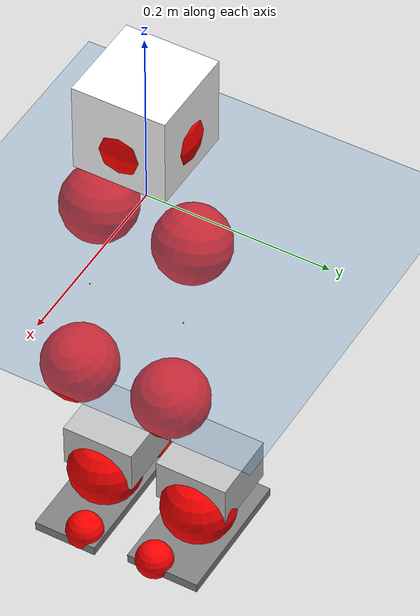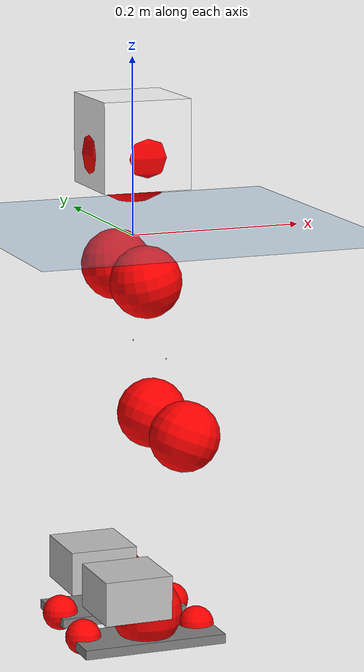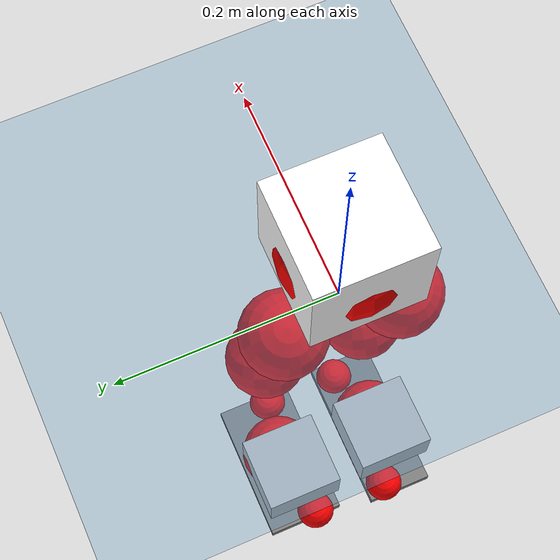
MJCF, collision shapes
<mujoco model="pi_12dof_release_v1">
  <compiler angle="radian" assetdir="assets" balanceinertia="true" inertiafromgeom="false"/>

  <option timestep="0.005" density="1.2" viscosity="2e-05"/>

  <size nkey="1"/>

  <visual>
    <quality shadowsize="8192"/>
    <map shadowclip="0.5"/>
  </visual>

  <default>
    <default class="/">
      <joint armature="0.01" damping="0.01" frictionloss="0.01"/>
      <geom contype="0" conaffinity="0" group="1" solref="-1000 -80"/>
      <site size="0.01 0.005 0.005" group="5"/>
      <general forcelimited="true" biastype="affine" gainprm="20" biasprm="0 -20 -0.5"/>
      <default class="foot">
        <geom size="0.0845 0.036 0.005" type="box" condim="6" group="4" priority="1" friction="0.9 0.2 0.2" solimp="0.015 1 0.005"/>
      </default>
      <default class="reward_collision_sphere">
        <geom group="5" rgba="1 0 0 1"/>
      </default>
    </default>
  </default>

  <asset>
    <texture type="skybox" colorspace="auto" name="//unnamed_texture_0" builtin="gradient" rgb1="0.95 0.95 0.95" rgb2="0.95 0.95 0.95" width="100" height="600"/>
    <texture type="2d" colorspace="auto" name="texplane" builtin="checker" rgb1="0.345 0.575 0.748" rgb2="0.345 0.575 0.748" markrgb="1 1 1" width="512" height="512"/>
    <material name="MatPlane" class="/" texture="texplane" texuniform="true" texrepeat="2 2" specular="0.9"/>
    <mesh name="baselink_1" class="/" file="baselink_1.STL"/>
    <mesh name="r_hip_pitch_link" class="/" file="r_hip_pitch_link.STL"/>
    <mesh name="r_hip_roll_link" class="/" file="r_hip_roll_link.STL"/>
    <mesh name="r_thigh_link" class="/" file="r_thigh_link.STL"/>
    <mesh name="r_calf_link" class="/" file="r_calf_link.STL"/>
    <mesh name="r_ankle_pitch_link" class="/" file="r_ankle_pitch_link.STL"/>
    <mesh name="r_ankle_roll_link" class="/" file="r_ankle_roll_link.STL"/>
    <mesh name="l_hip_pitch_link" class="/" file="l_hip_pitch_link.STL"/>
    <mesh name="l_hip_roll_link" class="/" file="l_hip_roll_link.STL"/>
    <mesh name="l_thigh_link" class="/" file="l_thigh_link.STL"/>
    <mesh name="l_calf_link" class="/" file="l_calf_link.STL"/>
    <mesh name="l_ankle_pitch_link" class="/" file="l_ankle_pitch_link.STL"/>
    <mesh name="l_ankle_roll_link" class="/" file="l_ankle_roll_link.STL"/>
  </asset>

  <worldbody>
    <geom name="floor" class="/" size="100 100 0.125" type="plane" group="0" material="MatPlane"/>
    <light name="toplight_shadow" class="/" pos="0 0 5" dir="0.0990148 0.0990148 -0.990148" type="directional" ambient="0.04 0.04 0.04" diffuse="0.55 0.55 0.55" specular="0.12 0.12 0.12"/>
    <light name="toplight_fill" class="/" pos="0 0 5" dir="0.0990148 0.0990148 -0.990148" type="directional" castshadow="false" ambient="0.04 0.04 0.04" diffuse="0.3 0.3 0.3" specular="0.08 0.08 0.08"/>
    <body name="trunk" pos="-0.000613141 5.08842e-05 0.00156693" quat="0.999999 0.000143645 0.000267381 -0.00109247">
      <inertial pos="0.00163631 -0.00226123 0.0511562" quat="0.695889 0.0098272 0.00960769 0.718018" mass="2.22333" diaginertia="0.0103015 0.00142759 0.0161935"/>
      <joint name="//unnamed_joint_0" type="free"/>
      <geom name="//unnamed_geom_1" class="/" type="mesh" density="0" rgba="1 1 1 1" mesh="baselink_1"/>
      <geom name="//unnamed_geom_2" class="/" size="0.0503619 0.0503619 0.0503619" pos="0 0 0.105294" type="box" rgba="1 1 1 1"/>
      <geom name="//unnamed_geom_3" class="reward_collision_sphere" size="0.0553981" pos="0 0 0.0921319"/>
      <site name="imu" class="/" pos="0.00908418 -0.000947383 -0.00920748" size="0.0100724"/>
      <camera name="track" class="/" pos="0 -1.38736 0" quat="0.707107 0.707107 0 0" mode="trackcom"/>
      <camera name="ego_camera" class="/" pos="0.0758898 0 0.236911" quat="-0.5 -0.5 0.5 0.5"/>
      <body name="r_hip_pitch_link" pos="-0.00212615 -0.018557 -0.045593" quat="0.992195 1.34503e-06 -0.1247 3.88463e-05">
        <inertial pos="0.00066893 -0.0418236 -0.000251744" quat="-0.0180866 0.705704 -0.0271249 0.707756" mass="0.386462" diaginertia="0.000114441 1.50948e-05 0.00032412"/>
        <joint name="r_hip_pitch_joint" class="/" pos="0 0 0" axis="-0.00466535 -0.99998 0.0042423" stiffness="0.010899" range="-1.77403 1.21986" armature="0.00894915" damping="0.0137028" frictionloss="0.00900808"/>
        <geom name="//unnamed_geom_4" class="/" type="mesh" density="0" rgba="0.75294 0.75294 0.75294 1" mesh="r_hip_pitch_link"/>
        <geom name="//unnamed_geom_5" class="/" size="0.000503619 0.000503619 0.000503619" type="box" rgba="0.75294 0.75294 0.75294 1"/>
        <body name="r_hip_roll_link" pos="-0.00247451 -0.0376957 0.00256817" quat="0.999999 0.000993479 0.000429598 -5.42806e-05">
          <inertial pos="-0.00308519 -0.000505048 -0.0782279" quat="0.697153 -0.0775615 -0.0788652 0.708338" mass="0.388027" diaginertia="0.000360587 4.46012e-05 0.000521115"/>
          <joint name="r_hip_roll_joint" class="/" pos="0 0 0" axis="-0.999898 -0.0142553 -0.000559879" stiffness="0.00168229" range="-0.139507 0.497364" armature="0.00863189" damping="0.0051755" frictionloss="0.0108833"/>
          <geom name="//unnamed_geom_6" class="/" type="mesh" density="0" rgba="0.75294 0.75294 0.75294 1" mesh="r_hip_roll_link"/>
          <geom name="//unnamed_geom_7" class="/" size="0.000503619 0.000503619 0.000503619" type="box" rgba="0.75294 0.75294 0.75294 1"/>
          <geom name="//unnamed_geom_8" class="reward_collision_sphere" size="0.0402895"/>
          <body name="r_thigh_link" pos="0.001933 0.00218206 -0.0924823" quat="1 -0.000177008 -2.12766e-05 -0.000137573">
            <inertial pos="-0.000260805 0.0010644 -0.0650914" quat="0.737222 0.67565 1.41901e-05 0.000523395" mass="0.116509" diaginertia="0.000129066 1.50802e-05 0.000229912"/>
            <joint name="r_thigh_joint" class="/" pos="0 0 0" axis="0.00393701 -0.00159408 -0.999991" stiffness="0.008184" range="-0.357724 0.594156" armature="0.0110243" damping="0" frictionloss="0.011346"/>
            <geom name="//unnamed_geom_9" class="/" type="mesh" density="0" rgba="0.75294 0.75294 0.75294 1" mesh="r_thigh_link"/>
            <geom name="//unnamed_geom_10" class="/" size="0.000503619 0.000503619 0.000503619" type="box" rgba="0.75294 0.75294 0.75294 1"/>
            <body name="r_calf_link" pos="-0.00101405 1.06353e-05 -0.0938042" quat="0.947636 0.000123342 0.319354 6.31689e-05">
              <inertial pos="-0.00328656 -0.00153371 -0.0947604" quat="0.999946 -0.00235544 -0.0040754 0.00921122" mass="0.836715" diaginertia="0.0035889 0.000571662 0.000661439"/>
              <joint name="r_calf_joint" class="/" pos="0 0 0" axis="0.0134526 -0.999909 -0.000777181" range="-1.65085 0.689014" armature="0.00872374" damping="0.00409743" frictionloss="0.00955345"/>
              <geom name="//unnamed_geom_11" class="/" type="mesh" density="0" rgba="0.75294 0.75294 0.75294 1" mesh="r_calf_link"/>
              <geom name="//unnamed_geom_12" class="/" size="0.000503619 0.000503619 0.000503619" type="box" rgba="0.75294 0.75294 0.75294 1"/>
              <geom name="//unnamed_geom_13" class="reward_collision_sphere" size="0.0402895"/>
              <body name="r_ankle_pitch_link" pos="0.00280389 -0.00181962 -0.186325" quat="0.980138 -0.000824142 -0.198314 0.00086097">
                <inertial pos="0.00675264 0.0018175 -0.00296384" quat="-0.00378311 0.71565 -0.00502417 0.698431" mass="0.186311" diaginertia="0.000315758 3.46183e-05 0.000485201"/>
                <joint name="r_ankle_pitch_joint" class="/" pos="0 0 0" axis="-0.0105231 -0.999911 0.00816792" range="-1.25303 0.557704" armature="0.0114909" damping="0" frictionloss="0.0105977"/>
                <geom name="//unnamed_geom_14" class="/" type="mesh" density="0" rgba="0.75294 0.75294 0.75294 1" mesh="r_ankle_pitch_link"/>
                <geom name="//unnamed_geom_15" class="/" size="0.0392823 0.0402895 0.0251809" type="box" rgba="0.75294 0.75294 0.75294 1"/>
                <body name="r_ankle_roll_link" pos="0.073937 -0.000178536 0.000399101" quat="0.999999 -0.00128856 0.000183734 -0.000278161">
                  <inertial pos="-0.026859 -0.000232468 -0.0197498" quat="0.564178 0.430183 0.435459 0.554094" mass="0.566635" diaginertia="0.00127235 0.000166218 0.00116307"/>
                  <joint name="r_ankle_roll_joint" class="/" pos="0 0 0" axis="-0.999896 -0.00130118 0.0143745" stiffness="0.000635486" range="-0.0950317 0.148689" armature="0.0108643" damping="0.0132575" frictionloss="0.0104172"/>
                  <geom name="//unnamed_geom_16" class="/" type="mesh" density="0" rgba="0.75294 0.75294 0.75294 1" mesh="r_ankle_roll_link"/>
                  <geom name="//unnamed_geom_17" class="/" type="mesh" rgba="0.75294 0.75294 0.75294 1" mesh="r_ankle_roll_link"/>
                  <geom name="right_foot" class="foot" size="0.0833664 0.035174 0.00536738" pos="-0.0516051 0 -0.0579115"/>
                  <geom name="//unnamed_geom_19" class="reward_collision_sphere" size="0.0402895" pos="-0.0505932 0 -0.0263234"/>
                  <geom name="//unnamed_geom_20" class="reward_collision_sphere" size="0.0201447" pos="0.015178 0.0138736 -0.0526468"/>
                  <geom name="//unnamed_geom_21" class="reward_collision_sphere" size="0.0201447" pos="-0.121424 0.0138736 -0.0526468"/>
                  <site name="right_foot" class="foot" pos="-0.0516051 0 -0.0579115" size="0.0100724"/>
                </body>
              </body>
            </body>
          </body>
        </body>
      </body>
      <body name="l_hip_pitch_link" pos="0.00139666 0.0134979 -0.0452129" quat="0.992209 -6.5465e-05 -0.124587 -3.59459e-05">
        <inertial pos="0.00063018 0.0399975 -0.00169762" quat="-0.0256558 0.707129 0.0307769 0.705949" mass="0.405342" diaginertia="0.000139958 1.71948e-05 0.000392476"/>
        <joint name="l_hip_pitch_joint" class="/" pos="0 0 0" axis="-0.00207013 0.999998 0.000699437" range="-1.25461 1.75684" armature="0.0097692" damping="0.025855" frictionloss="0.00864234"/>
        <geom name="//unnamed_geom_22" class="/" type="mesh" density="0" rgba="0.75294 0.75294 0.75294 1" mesh="l_hip_pitch_link"/>
        <geom name="//unnamed_geom_23" class="/" size="0.000503619 0.000503619 0.000503619" type="box" rgba="0.75294 0.75294 0.75294 1"/>
        <body name="l_hip_roll_link" pos="-0.00178977 0.0367056 0.00276585" quat="1 0.000230558 0.000824136 0.00030158">
          <inertial pos="-0.00288838 0.001461 -0.0814586" quat="0.699161 -0.074947 -0.0758421 0.706969" mass="0.373342" diaginertia="0.000336312 4.45318e-05 0.000500414"/>
          <joint name="l_hip_roll_joint" class="/" pos="0 0 0" axis="-0.999971 0.00757442 0.000540973" range="-0.470275 0.112581" armature="0.00971623" damping="0.0194866" frictionloss="0.00869981"/>
          <geom name="//unnamed_geom_24" class="/" type="mesh" density="0" rgba="0.75294 0.75294 0.75294 1" mesh="l_hip_roll_link"/>
          <geom name="//unnamed_geom_25" class="/" size="0.000503619 0.000503619 0.000503619" type="box" rgba="0.75294 0.75294 0.75294 1"/>
          <geom name="//unnamed_geom_26" class="reward_collision_sphere" size="0.0402895"/>
          <body name="l_thigh_link" pos="-0.00242291 0.00139036 -0.0924544" quat="1 0.000225943 0.000134059 0.000473676">
            <inertial pos="0.00276529 0.00107033 -0.0642039" quat="0.684475 0.729005 -0.00510168 -0.0043676" mass="0.116624" diaginertia="0.000128954 1.57785e-05 0.000234072"/>
            <joint name="l_thigh_joint" class="/" pos="0 0 0" axis="0.0025956 -0.00084727 -0.999996" range="-0.633299 0.241305" armature="0.0107401" damping="0.00893491" frictionloss="0.0102162"/>
            <geom name="//unnamed_geom_27" class="/" type="mesh" density="0" rgba="0.75294 0.75294 0.75294 1" mesh="l_thigh_link"/>
            <geom name="//unnamed_geom_28" class="/" size="0.000503619 0.000503619 0.000503619" type="box" rgba="0.75294 0.75294 0.75294 1"/>
            <body name="l_calf_link" pos="4.11596e-05 -0.0012649 -0.0901369" quat="0.947459 -0.000213741 0.319876 0.00031082">
              <inertial pos="-0.00248798 0.00432999 -0.0932322" quat="0.999983 0.0026538 0.00265441 0.00437561" mass="0.847098" diaginertia="0.00368504 0.000557303 0.000683436"/>
              <joint name="l_calf_joint" class="/" pos="0 0 0" axis="0.0119006 0.999913 0.00564092" stiffness="0.00100326" range="-0.659378 1.68633" armature="0.0103862" damping="0" frictionloss="0.0109527"/>
              <geom name="//unnamed_geom_29" class="/" type="mesh" density="0" rgba="0.75294 0.75294 0.75294 1" mesh="l_calf_link"/>
              <geom name="//unnamed_geom_30" class="/" size="0.000503619 0.000503619 0.000503619" type="box" rgba="0.75294 0.75294 0.75294 1"/>
              <geom name="//unnamed_geom_31" class="reward_collision_sphere" size="0.0402895"/>
              <body name="l_ankle_pitch_link" pos="0.00103697 0.00283837 -0.186536" quat="0.980017 0.000846028 -0.19891 -0.000838484">
                <inertial pos="0.00470745 0.00201688 -0.000141085" quat="-0.00222486 0.707167 0.00212175 0.707039" mass="0.167465" diaginertia="0.000304072 3.48148e-05 0.00046145"/>
                <joint name="l_ankle_pitch_joint" class="/" pos="0 0 0" axis="0.00032706 0.999999 0.00154412" range="-0.560563 1.24666" armature="0.00876456" damping="0.00750434" frictionloss="0.0111293"/>
                <geom name="//unnamed_geom_32" class="/" type="mesh" density="0" rgba="0.75294 0.75294 0.75294 1" mesh="l_ankle_pitch_link"/>
                <geom name="//unnamed_geom_33" class="/" size="0.0392823 0.0402895 0.0251809" type="box" rgba="0.75294 0.75294 0.75294 1"/>
                <body name="l_ankle_roll_link" pos="0.0773496 0.00254121 -0.000439131" quat="1 -0.000726665 -0.000288538 -0.00015015">
                  <inertial pos="-0.0220264 -0.00312559 -0.0187125" quat="0.55017 0.439084 0.438462 0.558811" mass="0.531504" diaginertia="0.00116452 0.000165597 0.00108422"/>
                  <joint name="l_ankle_roll_joint" class="/" pos="0 0 0" axis="-0.999995 0.000780452 -0.00294246" range="-0.104945 0.0964362" armature="0.0115215" damping="0.017333" frictionloss="0.0112258"/>
                  <geom name="//unnamed_geom_34" class="/" type="mesh" density="0" rgba="0.75294 0.75294 0.75294 1" mesh="l_ankle_roll_link"/>
                  <geom name="//unnamed_geom_35" class="/" type="mesh" rgba="0.75294 0.75294 0.75294 1" mesh="l_ankle_roll_link"/>
                  <geom name="left_foot" class="foot" size="0.0755 0.040691 0.00530626" pos="-0.0516051 0 -0.0579115"/>
                  <geom name="//unnamed_geom_37" class="reward_collision_sphere" size="0.0402895" pos="-0.0505932 0 -0.0263234"/>
                  <geom name="//unnamed_geom_38" class="reward_collision_sphere" size="0.0201447" pos="0.015178 -0.0138736 -0.0526468"/>
                  <geom name="//unnamed_geom_39" class="reward_collision_sphere" size="0.0201447" pos="-0.121424 -0.0138736 -0.0526468"/>
                  <site name="left_foot" class="foot" pos="-0.0516051 0 -0.0579115" size="0.0100724"/>
                </body>
              </body>
            </body>
          </body>
        </body>
      </body>
    </body>
  </worldbody>

  <contact>
    <pair class="/" geom1="floor" geom2="right_foot" name="//unnamed_contact_1"/>
    <pair class="/" geom1="floor" geom2="left_foot" name="//unnamed_contact_0"/>
  </contact>

  <actuator>
    <general name="r_hip_pitch_joint" class="/" joint="r_hip_pitch_joint" forcerange="-23.2599 23.2599" gainprm="19.8771" biasprm="0 -19.8771 -0.479216"/>
    <general name="r_hip_roll_joint" class="/" joint="r_hip_roll_joint" forcerange="-21.2193 21.2193" gainprm="19.8771" biasprm="0 -19.8771 -0.479216"/>
    <general name="r_thigh_joint" class="/" joint="r_thigh_joint" forcerange="-20.3387 20.3387" gainprm="19.8771" biasprm="0 -19.8771 -0.479216"/>
    <general name="r_calf_joint" class="/" joint="r_calf_joint" forcerange="-22.6763 22.6763" gainprm="19.8771" biasprm="0 -19.8771 -0.479216"/>
    <general name="r_ankle_pitch_joint" class="/" joint="r_ankle_pitch_joint" forcerange="-20.7544 20.7544" gainprm="19.8771" biasprm="0 -19.8771 -0.479216"/>
    <general name="r_ankle_roll_joint" class="/" joint="r_ankle_roll_joint" forcerange="-21.9443 21.9443" gainprm="19.8771" biasprm="0 -19.8771 -0.479216"/>
    <general name="l_hip_pitch_joint" class="/" joint="l_hip_pitch_joint" forcerange="-19.0296 19.0296" gainprm="19.8771" biasprm="0 -19.8771 -0.479216"/>
    <general name="l_hip_roll_joint" class="/" joint="l_hip_roll_joint" forcerange="-19.9392 19.9392" gainprm="19.8771" biasprm="0 -19.8771 -0.479216"/>
    <general name="l_thigh_joint" class="/" joint="l_thigh_joint" forcerange="-19.983 19.983" gainprm="19.8771" biasprm="0 -19.8771 -0.479216"/>
    <general name="l_calf_joint" class="/" joint="l_calf_joint" forcerange="-21.0578 21.0578" gainprm="19.8771" biasprm="0 -19.8771 -0.479216"/>
    <general name="l_ankle_pitch_joint" class="/" joint="l_ankle_pitch_joint" forcerange="-23.3688 23.3688" gainprm="19.8771" biasprm="0 -19.8771 -0.479216"/>
    <general name="l_ankle_roll_joint" class="/" joint="l_ankle_roll_joint" forcerange="-21.1921 21.1921" gainprm="19.8771" biasprm="0 -19.8771 -0.479216"/>
  </actuator>

  <sensor>
    <gyro site="imu" name="imu_angular_velocity"/>
    <velocimeter site="imu" name="imu_linear_velocity"/>
    <framelinvel objtype="site" objname="left_foot" name="left_foot_global_linear_velocity"/>
    <framelinvel objtype="site" objname="right_foot" name="right_foot_global_linear_velocity"/>
  </sensor>

  <keyframe>
    <key name="home" qpos="0 0 0.291 1 0 0 0 0.4 0 0 -0.8 0.4 0 -0.4 0 0 0.8 -0.4 0"/>
  </keyframe>
</mujoco>
